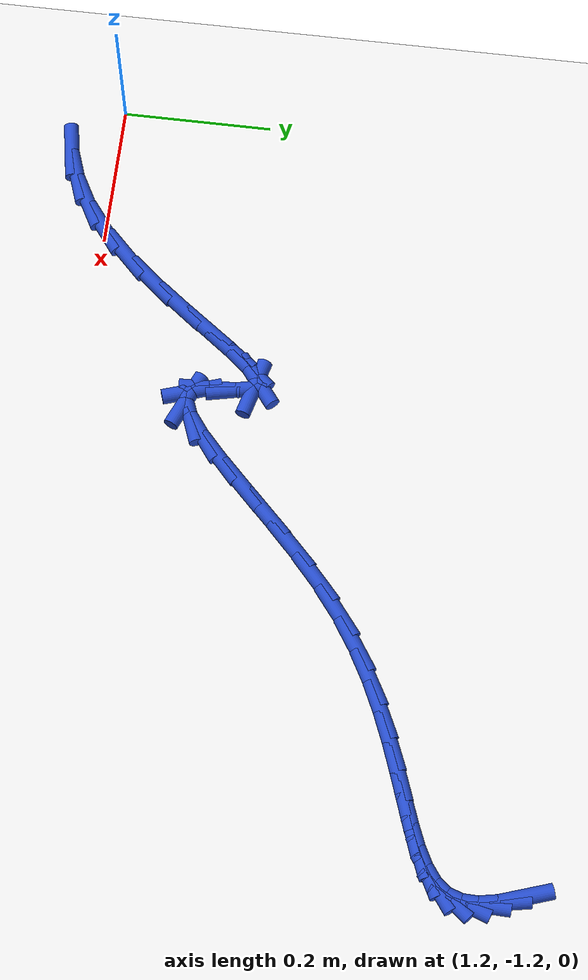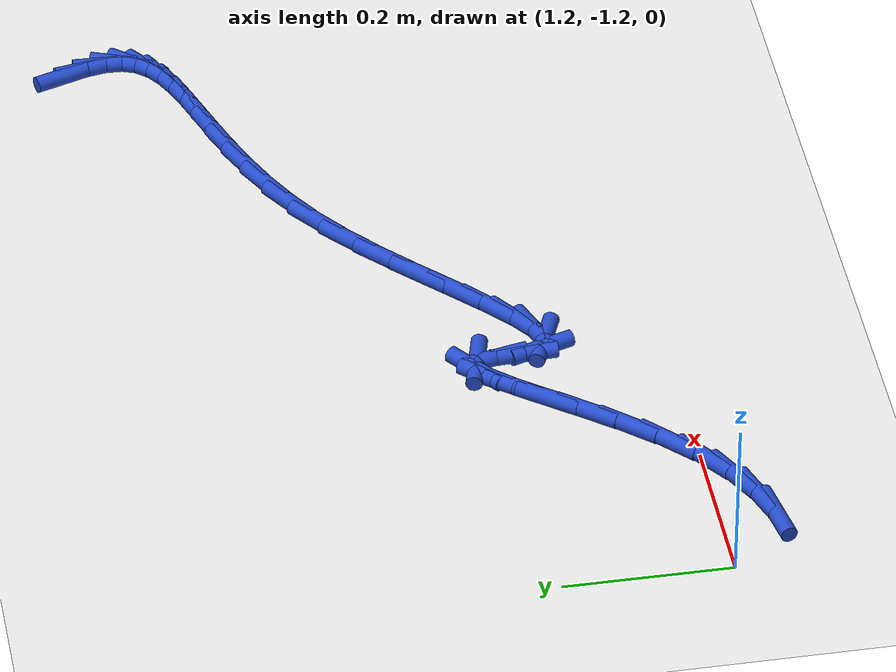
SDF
<sdf version="1.6">
 <world name="default">
  <model name="ground_plane">
   <static>1</static>
   <link name="link">
    <collision name="collision">
     <geometry><plane><normal>0 0 1</normal><size>100 100</size></plane></geometry>
     <surface><friction><ode><mu>100</mu><mu2>50</mu2></ode></friction></surface>
    </collision>
    <visual name="visual">
     <cast_shadows>0</cast_shadows>
     <geometry><plane><normal>0 0 1</normal><size>100 100</size></plane></geometry>
     <material>
      <script><uri>file://media/materials/scripts/gazebo.material</uri><name>Gazebo/WhiteGlow</name></script>
     </material>
    </visual>
   </link>
  </model>
  <model name="line">
   <link name="link_135">
    <pose>2.226742609398391 -0.5698912368181684 0.01 0 1.57 -1.2467881334065936</pose>
    <collision name="collision">
     <geometry><cylinder><radius>0.01</radius><length>0.08</length></cylinder></geometry>
    </collision>
    <visual name="visual">
     <material>
      <script><name>Gazebo/Blue</name><uri>file://media/materials/scripts/gazebo.material</uri></script>
     </material>
     <geometry><cylinder><radius>0.01</radius><length>0.08</length></cylinder></geometry>
    </visual>
   </link>
   <link name="link_136">
    <pose>2.2357094941116467 -0.5965908126175883 0.01 0 1.57 -1.3845893707359849</pose>
    <collision name="collision">
     <geometry><cylinder><radius>0.01</radius><length>0.08</length></cylinder></geometry>
    </collision>
    <visual name="visual">
     <material>
      <script><name>Gazebo/Blue</name><uri>file://media/materials/scripts/gazebo.material</uri></script>
     </material>
     <geometry><cylinder><radius>0.01</radius><length>0.08</length></cylinder></geometry>
    </visual>
   </link>
   <link name="link_137">
    <pose>2.240241118444648 -0.6206453802357828 0.01 0 1.57 1.5405326830210382</pose>
    <collision name="collision">
     <geometry><cylinder><radius>0.01</radius><length>0.08</length></cylinder></geometry>
    </collision>
    <visual name="visual">
     <material>
      <script><name>Gazebo/Blue</name><uri>file://media/materials/scripts/gazebo.material</uri></script>
     </material>
     <geometry><cylinder><radius>0.01</radius><length>0.08</length></cylinder></geometry>
    </visual>
   </link>
   <link name="link_138">
    <pose>2.2396012696097003 -0.6417814167448136 0.01 0 1.57 1.2234128691656008</pose>
    <collision name="collision">
     <geometry><cylinder><radius>0.01</radius><length>0.08</length></cylinder></geometry>
    </collision>
    <visual name="visual">
     <material>
      <script><name>Gazebo/Blue</name><uri>file://media/materials/scripts/gazebo.material</uri></script>
     </material>
     <geometry><cylinder><radius>0.01</radius><length>0.08</length></cylinder></geometry>
    </visual>
   </link>
   <link name="link_139">
    <pose>2.2330931027554515 -0.6597564944518809 0.01 0 1.57 0.8830381018757033</pose>
    <collision name="collision">
     <geometry><cylinder><radius>0.01</radius><length>0.08</length></cylinder></geometry>
    </collision>
    <visual name="visual">
     <material>
      <script><name>Gazebo/Blue</name><uri>file://media/materials/scripts/gazebo.material</uri></script>
     </material>
     <geometry><cylinder><radius>0.01</radius><length>0.08</length></cylinder></geometry>
    </visual>
   </link>
   <link name="link_140">
    <pose>2.220687844778665 -0.6748558701208102 0.01 0 1.57 0.6296674200466695</pose>
    <collision name="collision">
     <geometry><cylinder><radius>0.01</radius><length>0.08</length></cylinder></geometry>
    </collision>
    <visual name="visual">
     <material>
      <script><name>Gazebo/Blue</name><uri>file://media/materials/scripts/gazebo.material</uri></script>
     </material>
     <geometry><cylinder><radius>0.01</radius><length>0.08</length></cylinder></geometry>
    </visual>
   </link>
   <link name="link_141">
    <pose>2.20291467035205 -0.68780550223617 0.01 0 1.57 0.4721781390789509</pose>
    <collision name="collision">
     <geometry><cylinder><radius>0.01</radius><length>0.08</length></cylinder></geometry>
    </collision>
    <visual name="visual">
     <material>
      <script><name>Gazebo/Blue</name><uri>file://media/materials/scripts/gazebo.material</uri></script>
     </material>
     <geometry><cylinder><radius>0.01</radius><length>0.08</length></cylinder></geometry>
    </visual>
   </link>
   <link name="link_142">
    <pose>2.1803198730256423 -0.6993448708324309 0.01 0 1.57 0.38436746809461037</pose>
    <collision name="collision">
     <geometry><cylinder><radius>0.01</radius><length>0.08</length></cylinder></geometry>
    </collision>
    <visual name="visual">
     <material>
      <script><name>Gazebo/Blue</name><uri>file://media/materials/scripts/gazebo.material</uri></script>
     </material>
     <geometry><cylinder><radius>0.01</radius><length>0.08</length></cylinder></geometry>
    </visual>
   </link>
   <link name="link_143">
    <pose>2.153449746349474 -0.7102134559440625 0.01 0 1.57 0.34328504058333953</pose>
    <collision name="collision">
     <geometry><cylinder><radius>0.01</radius><length>0.08</length></cylinder></geometry>
    </collision>
    <visual name="visual">
     <material>
      <script><name>Gazebo/Blue</name><uri>file://media/materials/scripts/gazebo.material</uri></script>
     </material>
     <geometry><cylinder><radius>0.01</radius><length>0.08</length></cylinder></geometry>
    </visual>
   </link>
   <link name="link_144">
    <pose>2.122850583873581 -0.7211507376055353 0.01 0 1.57 0.3346108846569066</pose>
    <collision name="collision">
     <geometry><cylinder><radius>0.01</radius><length>0.08</length></cylinder></geometry>
    </collision>
    <visual name="visual">
     <material>
      <script><name>Gazebo/Blue</name><uri>file://media/materials/scripts/gazebo.material</uri></script>
     </material>
     <geometry><cylinder><radius>0.01</radius><length>0.08</length></cylinder></geometry>
    </visual>
   </link>
   <link name="link_145">
    <pose>2.0890686791479984 -0.7328961958513183 0.01 0 1.57 0.3499849319210413</pose>
    <collision name="collision">
     <geometry><cylinder><radius>0.01</radius><length>0.08</length></cylinder></geometry>
    </collision>
    <visual name="visual">
     <material>
      <script><name>Gazebo/Blue</name><uri>file://media/materials/scripts/gazebo.material</uri></script>
     </material>
     <geometry><cylinder><radius>0.01</radius><length>0.08</length></cylinder></geometry>
    </visual>
   </link>
   <link name="link_146">
    <pose>2.052650325722759 -0.7461893107158812 0.01 0 1.57 0.38445909859014543</pose>
    <collision name="collision">
     <geometry><cylinder><radius>0.01</radius><length>0.08</length></cylinder></geometry>
    </collision>
    <visual name="visual">
     <material>
      <script><name>Gazebo/Blue</name><uri>file://media/materials/scripts/gazebo.material</uri></script>
     </material>
     <geometry><cylinder><radius>0.01</radius><length>0.08</length></cylinder></geometry>
    </visual>
   </link>
   <link name="link_147">
    <pose>2.0141418171478978 -0.7617695622336945 0.01 0 1.57 0.43489869366937545</pose>
    <collision name="collision">
     <geometry><cylinder><radius>0.01</radius><length>0.08</length></cylinder></geometry>
    </collision>
    <visual name="visual">
     <material>
      <script><name>Gazebo/Blue</name><uri>file://media/materials/scripts/gazebo.material</uri></script>
     </material>
     <geometry><cylinder><radius>0.01</radius><length>0.08</length></cylinder></geometry>
    </visual>
   </link>
   <link name="link_148">
    <pose>1.9740894469734485 -0.7803764304392281 0.01 0 1.57 0.4990103961989885</pose>
    <collision name="collision">
     <geometry><cylinder><radius>0.01</radius><length>0.08</length></cylinder></geometry>
    </collision>
    <visual name="visual">
     <material>
      <script><name>Gazebo/Blue</name><uri>file://media/materials/scripts/gazebo.material</uri></script>
     </material>
     <geometry><cylinder><radius>0.01</radius><length>0.08</length></cylinder></geometry>
    </visual>
   </link>
   <link name="link_149">
    <pose>1.933039508749447 -0.8027493953669511 0.01 0 1.57 0.5747261996818082</pose>
    <collision name="collision">
     <geometry><cylinder><radius>0.01</radius><length>0.08</length></cylinder></geometry>
    </collision>
    <visual name="visual">
     <material>
      <script><name>Gazebo/Blue</name><uri>file://media/materials/scripts/gazebo.material</uri></script>
     </material>
     <geometry><cylinder><radius>0.01</radius><length>0.08</length></cylinder></geometry>
    </visual>
   </link>
   <link name="link_150">
    <pose>1.891538296025927 -0.8296279370513338 0.01 0 1.57 0.6580792977568233</pose>
    <collision name="collision">
     <geometry><cylinder><radius>0.01</radius><length>0.08</length></cylinder></geometry>
    </collision>
    <visual name="visual">
     <material>
      <script><name>Gazebo/Blue</name><uri>file://media/materials/scripts/gazebo.material</uri></script>
     </material>
     <geometry><cylinder><radius>0.01</radius><length>0.08</length></cylinder></geometry>
    </visual>
   </link>
   <link name="link_151">
    <pose>1.8501400522620484 -0.8616300990144072 0.01 0 1.57 0.724883732779061</pose>
    <collision name="collision">
     <geometry><cylinder><radius>0.01</radius><length>0.08</length></cylinder></geometry>
    </collision>
    <visual name="visual">
     <material>
      <script><name>Gazebo/Blue</name><uri>file://media/materials/scripts/gazebo.material</uri></script>
     </material>
     <geometry><cylinder><radius>0.01</radius><length>0.08</length></cylinder></geometry>
    </visual>
   </link>
   <link name="link_152">
    <pose>1.8095142186572681 -0.8976142553778725 0.01 0 1.57 0.7645319546129534</pose>
    <collision name="collision">
     <geometry><cylinder><radius>0.01</radius><length>0.08</length></cylinder></geometry>
    </collision>
    <visual name="visual">
     <material>
      <script><name>Gazebo/Blue</name><uri>file://media/materials/scripts/gazebo.material</uri></script>
     </material>
     <geometry><cylinder><radius>0.01</radius><length>0.08</length></cylinder></geometry>
    </visual>
   </link>
   <link name="link_153">
    <pose>1.770417033056422 -0.9351129434846107 0.01 0 1.57 0.7813489971095846</pose>
    <collision name="collision">
     <geometry><cylinder><radius>0.01</radius><length>0.08</length></cylinder></geometry>
    </collision>
    <visual name="visual">
     <material>
      <script><name>Gazebo/Blue</name><uri>file://media/materials/scripts/gazebo.material</uri></script>
     </material>
     <geometry><cylinder><radius>0.01</radius><length>0.08</length></cylinder></geometry>
    </visual>
   </link>
   <link name="link_154">
    <pose>1.7336068599205934 -0.9716262161728617 0.01 0 1.57 0.7743661773029119</pose>
    <collision name="collision">
     <geometry><cylinder><radius>0.01</radius><length>0.08</length></cylinder></geometry>
    </collision>
    <visual name="visual">
     <material>
      <script><name>Gazebo/Blue</name><uri>file://media/materials/scripts/gazebo.material</uri></script>
     </material>
     <geometry><cylinder><radius>0.01</radius><length>0.08</length></cylinder></geometry>
    </visual>
   </link>
   <link name="link_155">
    <pose>1.69984206371086 -1.0046541262808673 0.01 0 1.57 0.7342451540467567</pose>
    <collision name="collision">
     <geometry><cylinder><radius>0.01</radius><length>0.08</length></cylinder></geometry>
    </collision>
    <visual name="visual">
     <material>
      <script><name>Gazebo/Blue</name><uri>file://media/materials/scripts/gazebo.material</uri></script>
     </material>
     <geometry><cylinder><radius>0.01</radius><length>0.08</length></cylinder></geometry>
    </visual>
   </link>
   <link name="link_156">
    <pose>1.669881008888303 -1.0316967266468693 0.01 0 1.57 0.6309914271374496</pose>
    <collision name="collision">
     <geometry><cylinder><radius>0.01</radius><length>0.08</length></cylinder></geometry>
    </collision>
    <visual name="visual">
     <material>
      <script><name>Gazebo/Blue</name><uri>file://media/materials/scripts/gazebo.material</uri></script>
     </material>
     <geometry><cylinder><radius>0.01</radius><length>0.08</length></cylinder></geometry>
    </visual>
   </link>
   <link name="link_157">
    <pose>1.6444820599140015 -1.0502540701091099 0.01 0 1.57 0.3606342617818898</pose>
    <collision name="collision">
     <geometry><cylinder><radius>0.01</radius><length>0.08</length></cylinder></geometry>
    </collision>
    <visual name="visual">
     <material>
      <script><name>Gazebo/Blue</name><uri>file://media/materials/scripts/gazebo.material</uri></script>
     </material>
     <geometry><cylinder><radius>0.01</radius><length>0.08</length></cylinder></geometry>
    </visual>
   </link>
   <link name="link_158">
    <pose>1.6244035812490363 -1.0578262095058288 0.01 0 1.57 -0.39963982984609675</pose>
    <collision name="collision">
     <geometry><cylinder><radius>0.01</radius><length>0.08</length></cylinder></geometry>
    </collision>
    <visual name="visual">
     <material>
      <script><name>Gazebo/Blue</name><uri>file://media/materials/scripts/gazebo.material</uri></script>
     </material>
     <geometry><cylinder><radius>0.01</radius><length>0.08</length></cylinder></geometry>
    </visual>
   </link>
   <link name="link_159">
    <pose>1.610403937354488 -1.051913197675269 0.01 0 1.57 -1.2546838462225014</pose>
    <collision name="collision">
     <geometry><cylinder><radius>0.01</radius><length>0.08</length></cylinder></geometry>
    </collision>
    <visual name="visual">
     <material>
      <script><name>Gazebo/Blue</name><uri>file://media/materials/scripts/gazebo.material</uri></script>
     </material>
     <geometry><cylinder><radius>0.01</radius><length>0.08</length></cylinder></geometry>
    </visual>
   </link>
   <link name="link_160">
    <pose>1.603241492691435 -1.030015087455671 0.01 0 1.57 -1.526319250548172</pose>
    <collision name="collision">
     <geometry><cylinder><radius>0.01</radius><length>0.08</length></cylinder></geometry>
    </collision>
    <visual name="visual">
     <material>
      <script><name>Gazebo/Blue</name><uri>file://media/materials/scripts/gazebo.material</uri></script>
     </material>
     <geometry><cylinder><radius>0.01</radius><length>0.08</length></cylinder></geometry>
    </visual>
   </link>
   <link name="link_161">
    <pose>1.601692985814206 -0.9952222057653397 0.01 0 1.57 -1.3584815996413586</pose>
    <collision name="collision">
     <geometry><cylinder><radius>0.01</radius><length>0.08</length></cylinder></geometry>
    </collision>
    <visual name="visual">
     <material>
      <script><name>Gazebo/Blue</name><uri>file://media/materials/scripts/gazebo.material</uri></script>
     </material>
     <geometry><cylinder><radius>0.01</radius><length>0.08</length></cylinder></geometry>
    </visual>
   </link>
   <link name="link_162">
    <pose>1.5967778523838854 -0.9724208836556444 0.01 0 1.57 -0.2551743272800397</pose>
    <collision name="collision">
     <geometry><cylinder><radius>0.01</radius><length>0.08</length></cylinder></geometry>
    </collision>
    <visual name="visual">
     <material>
      <script><name>Gazebo/Blue</name><uri>file://media/materials/scripts/gazebo.material</uri></script>
     </material>
     <geometry><cylinder><radius>0.01</radius><length>0.08</length></cylinder></geometry>
    </visual>
   </link>
   <link name="link_163">
    <pose>1.5853195244237184 -0.9694318533023266 0.01 0 1.57 0.6557974326258726</pose>
    <collision name="collision">
     <geometry><cylinder><radius>0.01</radius><length>0.08</length></cylinder></geometry>
    </collision>
    <visual name="visual">
     <material>
      <script><name>Gazebo/Blue</name><uri>file://media/materials/scripts/gazebo.material</uri></script>
     </material>
     <geometry><cylinder><radius>0.01</radius><length>0.08</length></cylinder></geometry>
    </visual>
   </link>
   <link name="link_164">
    <pose>1.5680512266520654 -0.9827179577729199 0.01 0 1.57 0.8605353400546267</pose>
    <collision name="collision">
     <geometry><cylinder><radius>0.01</radius><length>0.08</length></cylinder></geometry>
    </collision>
    <visual name="visual">
     <material>
      <script><name>Gazebo/Blue</name><uri>file://media/materials/scripts/gazebo.material</uri></script>
     </material>
     <geometry><cylinder><radius>0.01</radius><length>0.08</length></cylinder></geometry>
    </visual>
   </link>
   <link name="link_165">
    <pose>1.5457296876587896 -1.0086737617883854 0.01 0 1.57 0.9208752033193348</pose>
    <collision name="collision">
     <geometry><cylinder><radius>0.01</radius><length>0.08</length></cylinder></geometry>
    </collision>
    <visual name="visual">
     <material>
      <script><name>Gazebo/Blue</name><uri>file://media/materials/scripts/gazebo.material</uri></script>
     </material>
     <geometry><cylinder><radius>0.01</radius><length>0.08</length></cylinder></geometry>
    </visual>
   </link>
   <link name="link_166">
    <pose>1.5191116360337524 -1.0436938300696847 0.01 0 1.57 0.9304861102222622</pose>
    <collision name="collision">
     <geometry><cylinder><radius>0.01</radius><length>0.08</length></cylinder></geometry>
    </collision>
    <visual name="visual">
     <material>
      <script><name>Gazebo/Blue</name><uri>file://media/materials/scripts/gazebo.material</uri></script>
     </material>
     <geometry><cylinder><radius>0.01</radius><length>0.08</length></cylinder></geometry>
    </visual>
   </link>
   <link name="link_167">
    <pose>1.4889538003668172 -1.0841727273377777 0.01 0 1.57 0.9095209986731252</pose>
    <collision name="collision">
     <geometry><cylinder><radius>0.01</radius><length>0.08</length></cylinder></geometry>
    </collision>
    <visual name="visual">
     <material>
      <script><name>Gazebo/Blue</name><uri>file://media/materials/scripts/gazebo.material</uri></script>
     </material>
     <geometry><cylinder><radius>0.01</radius><length>0.08</length></cylinder></geometry>
    </visual>
   </link>
   <link name="link_168">
    <pose>1.4560129092478469 -1.126505018313626 0.01 0 1.57 0.8595599762586926</pose>
    <collision name="collision">
     <geometry><cylinder><radius>0.01</radius><length>0.08</length></cylinder></geometry>
    </collision>
    <visual name="visual">
     <material>
      <script><name>Gazebo/Blue</name><uri>file://media/materials/scripts/gazebo.material</uri></script>
     </material>
     <geometry><cylinder><radius>0.01</radius><length>0.08</length></cylinder></geometry>
    </visual>
   </link>
   <link name="link_169">
    <pose>1.4210456912667033 -1.1670852677181907 0.01 0 1.57 0.7713249644976293</pose>
    <collision name="collision">
     <geometry><cylinder><radius>0.01</radius><length>0.08</length></cylinder></geometry>
    </collision>
    <visual name="visual">
     <material>
      <script><name>Gazebo/Blue</name><uri>file://media/materials/scripts/gazebo.material</uri></script>
     </material>
     <geometry><cylinder><radius>0.01</radius><length>0.08</length></cylinder></geometry>
    </visual>
   </link>
   <link name="link_170">
    <pose>1.3848078091119902 -1.2023172735172496 0.01 0 1.57 0.6413023520992296</pose>
    <collision name="collision">
     <geometry><cylinder><radius>0.01</radius><length>0.08</length></cylinder></geometry>
    </collision>
    <visual name="visual">
     <material>
      <script><name>Gazebo/Blue</name><uri>file://media/materials/scripts/gazebo.material</uri></script>
     </material>
     <geometry><cylinder><radius>0.01</radius><length>0.08</length></cylinder></geometry>
    </visual>
   </link>
   <link name="link_171">
    <pose>1.3479095148065603 -1.2298644365389475 0.01 0 1.57 0.493946463301184</pose>
    <collision name="collision">
     <geometry><cylinder><radius>0.01</radius><length>0.08</length></cylinder></geometry>
    </collision>
    <visual name="visual">
     <material>
      <script><name>Gazebo/Blue</name><uri>file://media/materials/scripts/gazebo.material</uri></script>
     </material>
     <geometry><cylinder><radius>0.01</radius><length>0.08</length></cylinder></geometry>
    </visual>
   </link>
   <link name="link_172">
    <pose>1.310669348382611 -1.2499170785667446 0.01 0 1.57 0.3365773506952272</pose>
    <collision name="collision">
     <geometry><cylinder><radius>0.01</radius><length>0.08</length></cylinder></geometry>
    </collision>
    <visual name="visual">
     <material>
      <script><name>Gazebo/Blue</name><uri>file://media/materials/scripts/gazebo.material</uri></script>
     </material>
     <geometry><cylinder><radius>0.01</radius><length>0.08</length></cylinder></geometry>
    </visual>
   </link>
   <link name="link_173">
    <pose>1.2733709981283925 -1.2629674205343995 0.01 0 1.57 0.17461977366933135</pose>
    <collision name="collision">
     <geometry><cylinder><radius>0.01</radius><length>0.08</length></cylinder></geometry>
    </collision>
    <visual name="visual">
     <material>
      <script><name>Gazebo/Blue</name><uri>file://media/materials/scripts/gazebo.material</uri></script>
     </material>
     <geometry><cylinder><radius>0.01</radius><length>0.08</length></cylinder></geometry>
    </visual>
   </link>
  </model>
 </world>
</sdf>
